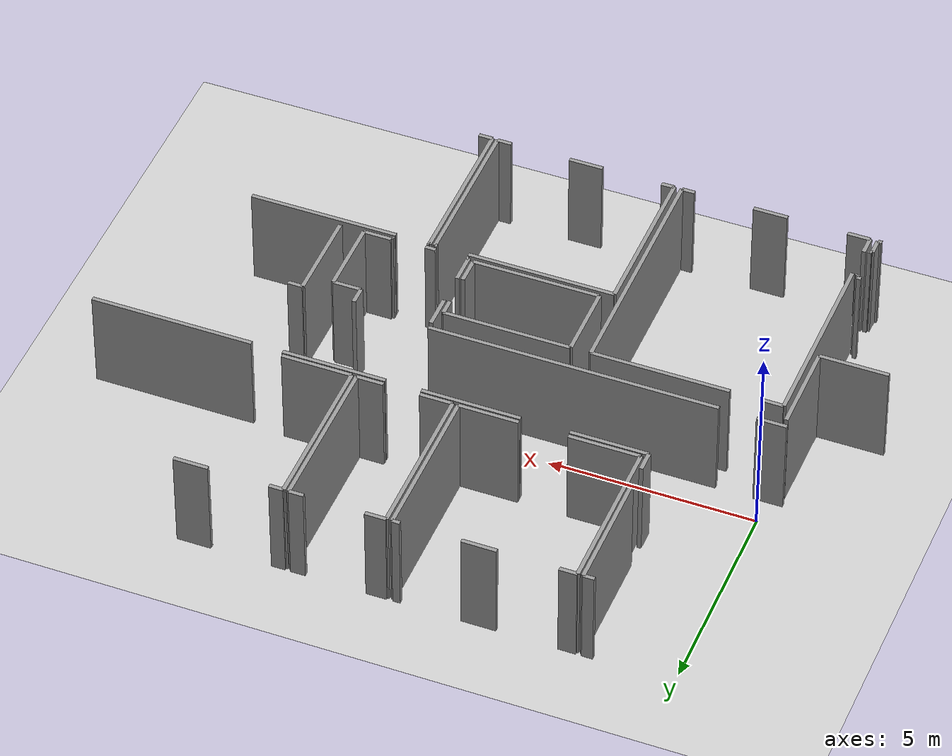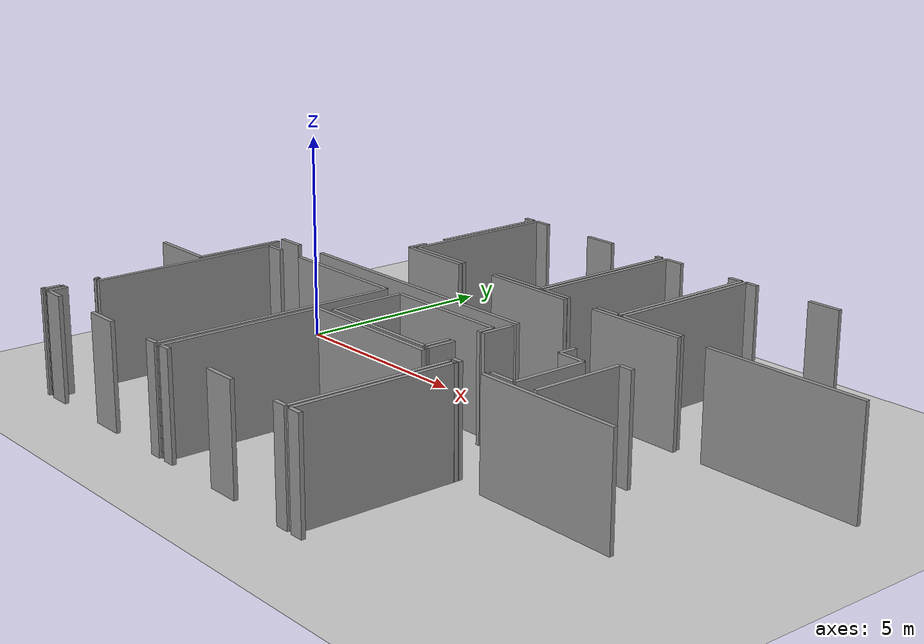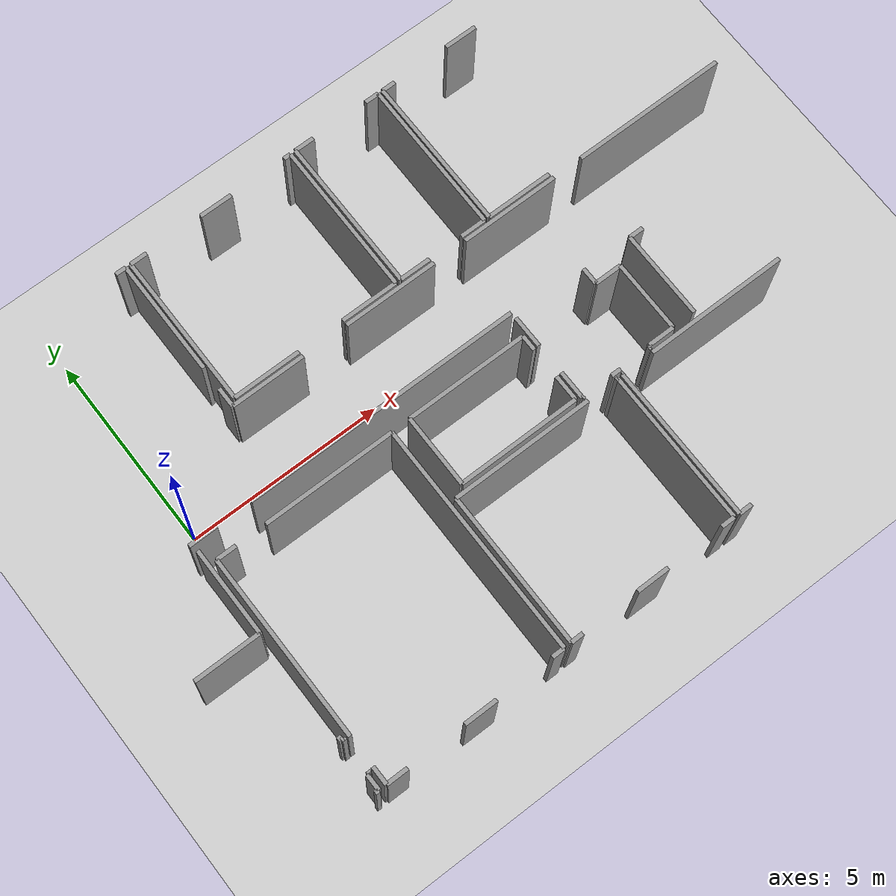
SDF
<sdf version="1.6">
 <world name="default">
  <model name="ground_plane">
   <static>1</static>
   <link name="link">
    <collision name="collision">
     <geometry><plane><normal>0 0 1</normal><size>100 100</size></plane></geometry>
     <surface><friction><ode><mu>100</mu><mu2>50</mu2></ode></friction></surface>
    </collision>
    <visual name="visual">
     <cast_shadows>0</cast_shadows>
     <geometry><plane><normal>0 0 1</normal><size>100 100</size></plane></geometry>
     <material>
      <script><uri>file://media/materials/scripts/gazebo.material</uri><name>Gazebo/Grey</name></script>
     </material>
    </visual>
   </link>
  </model>
  <model name="0510025537_Layout1_PLAN2">
   <static>1</static>
   <link name="Wall_102">
    <collision name="Wall_102_Collision">
     <geometry><box><size>2.2009912944 0.1 2.5</size></box></geometry>
     <pose>1.1004956472 0 1.25 0 0 0</pose>
    </collision>
    <visual name="Wall_102_Visual">
     <pose>1.1004956472 0 1.25 0 0 0</pose>
     <geometry><box><size>2.2009912944 0.1 2.5</size></box></geometry>
     <material>
      <script><uri>file://media/materials/scripts/gazebo.material</uri><name>Gazebo/Grey</name></script>
      <ambient>1 1 1 1</ambient>
     </material>
    </visual>
    <pose>19.9158670649 -6.12184660355 0 0 0 -1.57079632679</pose>
   </link>
   <link name="Wall_103">
    <collision name="Wall_103_Collision">
     <geometry><box><size>1.66251509182 0.1 2.5</size></box></geometry>
     <pose>0.831257545911 0 1.25 0 0 0</pose>
    </collision>
    <visual name="Wall_103_Visual">
     <pose>0.831257545911 0 1.25 0 0 0</pose>
     <geometry><box><size>1.66251509182 0.1 2.5</size></box></geometry>
     <material>
      <script><uri>file://media/materials/scripts/gazebo.material</uri><name>Gazebo/Grey</name></script>
      <ambient>1 1 1 1</ambient>
     </material>
    </visual>
    <pose>19.9158670649 -8.32283789795 0 0 0 3.14159265359</pose>
   </link>
   <link name="Wall_116">
    <collision name="Wall_116_Collision">
     <geometry><box><size>0.10059096397 0.1 2.5</size></box></geometry>
     <pose>0.0502954819851 0 1.25 0 0 0</pose>
    </collision>
    <visual name="Wall_116_Visual">
     <pose>0.0502954819851 0 1.25 0 0 0</pose>
     <geometry><box><size>0.10059096397 0.1 2.5</size></box></geometry>
     <material>
      <script><uri>file://media/materials/scripts/gazebo.material</uri><name>Gazebo/Grey</name></script>
      <ambient>1 1 1 1</ambient>
     </material>
    </visual>
    <pose>19.9218402491 -11.0067039461 0 0 0 -1.57079632679</pose>
   </link>
   <link name="Wall_117">
    <collision name="Wall_117_Collision">
     <geometry><box><size>0.0594141195908 0.1 2.5</size></box></geometry>
     <pose>0.0297070597954 0 1.25 0 0 0</pose>
    </collision>
    <visual name="Wall_117_Visual">
     <pose>0.0297070597954 0 1.25 0 0 0</pose>
     <geometry><box><size>0.0594141195908 0.1 2.5</size></box></geometry>
     <material>
      <script><uri>file://media/materials/scripts/gazebo.material</uri><name>Gazebo/Grey</name></script>
      <ambient>1 1 1 1</ambient>
     </material>
    </visual>
    <pose>19.9218402491 -11.1072949101 0 0 0 0.0</pose>
   </link>
   <link name="Wall_118">
    <collision name="Wall_118_Collision">
     <geometry><box><size>0.0510897883968 0.1 2.5</size></box></geometry>
     <pose>0.0255448941984 0 1.25 0 0 0</pose>
    </collision>
    <visual name="Wall_118_Visual">
     <pose>0.0255448941984 0 1.25 0 0 0</pose>
     <geometry><box><size>0.0510897883968 0.1 2.5</size></box></geometry>
     <material>
      <script><uri>file://media/materials/scripts/gazebo.material</uri><name>Gazebo/Grey</name></script>
      <ambient>1 1 1 1</ambient>
     </material>
    </visual>
    <pose>19.9812543687 -11.1072949101 0 0 0 -1.57079632679</pose>
   </link>
   <link name="Wall_119">
    <collision name="Wall_119_Collision">
     <geometry><box><size>0.0510897883968 0.1 2.5</size></box></geometry>
     <pose>0.0255448941984 0 1.25 0 0 0</pose>
    </collision>
    <visual name="Wall_119_Visual">
     <pose>0.0255448941984 0 1.25 0 0 0</pose>
     <geometry><box><size>0.0510897883968 0.1 2.5</size></box></geometry>
     <material>
      <script><uri>file://media/materials/scripts/gazebo.material</uri><name>Gazebo/Grey</name></script>
      <ambient>1 1 1 1</ambient>
     </material>
    </visual>
    <pose>19.9812543687 -11.9279722946 0 0 0 -1.57079632679</pose>
   </link>
   <link name="Wall_120">
    <collision name="Wall_120_Collision">
     <geometry><box><size>0.0582067738451 0.1 2.5</size></box></geometry>
     <pose>0.0291033869225 0 1.25 0 0 0</pose>
    </collision>
    <visual name="Wall_120_Visual">
     <pose>0.0291033869225 0 1.25 0 0 0</pose>
     <geometry><box><size>0.0582067738451 0.1 2.5</size></box></geometry>
     <material>
      <script><uri>file://media/materials/scripts/gazebo.material</uri><name>Gazebo/Grey</name></script>
      <ambient>1 1 1 1</ambient>
     </material>
    </visual>
    <pose>19.9812543687 -11.979062083 0 0 0 3.14159265359</pose>
   </link>
   <link name="Wall_121">
    <collision name="Wall_121_Collision">
     <geometry><box><size>0.392323822838 0.1 2.5</size></box></geometry>
     <pose>0.196161911419 0 1.25 0 0 0</pose>
    </collision>
    <visual name="Wall_121_Visual">
     <pose>0.196161911419 0 1.25 0 0 0</pose>
     <geometry><box><size>0.392323822838 0.1 2.5</size></box></geometry>
     <material>
      <script><uri>file://media/materials/scripts/gazebo.material</uri><name>Gazebo/Grey</name></script>
      <ambient>1 1 1 1</ambient>
     </material>
    </visual>
    <pose>19.9230475948 -11.979062083 0 0 0 -1.57079632679</pose>
   </link>
   <link name="Wall_122">
    <collision name="Wall_122_Collision">
     <geometry><box><size>0.0979220944271 0.1 2.5</size></box></geometry>
     <pose>0.0489610472136 0 1.25 0 0 0</pose>
    </collision>
    <visual name="Wall_122_Visual">
     <pose>0.0489610472136 0 1.25 0 0 0</pose>
     <geometry><box><size>0.0979220944271 0.1 2.5</size></box></geometry>
     <material>
      <script><uri>file://media/materials/scripts/gazebo.material</uri><name>Gazebo/Grey</name></script>
      <ambient>1 1 1 1</ambient>
     </material>
    </visual>
    <pose>19.9230475948 -12.3713859058 0 0 0 3.14159265359</pose>
   </link>
   <link name="Wall_124">
    <collision name="Wall_124_Collision">
     <geometry><box><size>0.452564021097 0.1 2.5</size></box></geometry>
     <pose>0.226282010548 0 1.25 0 0 0</pose>
    </collision>
    <visual name="Wall_124_Visual">
     <pose>0.226282010548 0 1.25 0 0 0</pose>
     <geometry><box><size>0.452564021097 0.1 2.5</size></box></geometry>
     <material>
      <script><uri>file://media/materials/scripts/gazebo.material</uri><name>Gazebo/Grey</name></script>
      <ambient>1 1 1 1</ambient>
     </material>
    </visual>
    <pose>20.1122196098 -12.3739276863 0 0 0 1.57079632679</pose>
   </link>
   <link name="Wall_125">
    <collision name="Wall_125_Collision">
     <geometry><box><size>4.62966257864 0.1 2.5</size></box></geometry>
     <pose>2.31483128932 0 1.25 0 0 0</pose>
    </collision>
    <visual name="Wall_125_Visual">
     <pose>2.31483128932 0 1.25 0 0 0</pose>
     <geometry><box><size>4.62966257864 0.1 2.5</size></box></geometry>
     <material>
      <script><uri>file://media/materials/scripts/gazebo.material</uri><name>Gazebo/Grey</name></script>
      <ambient>1 1 1 1</ambient>
     </material>
    </visual>
    <pose>20.1122196098 -11.1524750588 0 0 0 1.57079632679</pose>
   </link>
   <link name="Wall_126">
    <collision name="Wall_126_Collision">
     <geometry><box><size>0.505051788778 0.1 2.5</size></box></geometry>
     <pose>0.252525894389 0 1.25 0 0 0</pose>
    </collision>
    <visual name="Wall_126_Visual">
     <pose>0.252525894389 0 1.25 0 0 0</pose>
     <geometry><box><size>0.505051788778 0.1 2.5</size></box></geometry>
     <material>
      <script><uri>file://media/materials/scripts/gazebo.material</uri><name>Gazebo/Grey</name></script>
      <ambient>1 1 1 1</ambient>
     </material>
    </visual>
    <pose>20.1122196098 -6.52281248014 0 0 0 0.0</pose>
   </link>
   <link name="Wall_127">
    <collision name="Wall_127_Collision">
     <geometry><box><size>3.32051852323 0.1 2.5</size></box></geometry>
     <pose>1.66025926161 0 1.25 0 0 0</pose>
    </collision>
    <visual name="Wall_127_Visual">
     <pose>1.66025926161 0 1.25 0 0 0</pose>
     <geometry><box><size>3.32051852323 0.1 2.5</size></box></geometry>
     <material>
      <script><uri>file://media/materials/scripts/gazebo.material</uri><name>Gazebo/Grey</name></script>
      <ambient>1 1 1 1</ambient>
     </material>
    </visual>
    <pose>21.3836182246 -6.52281248014 0 0 0 0.0</pose>
   </link>
   <link name="Wall_128">
    <collision name="Wall_128_Collision">
     <geometry><box><size>5.85022558302 0.1 2.5</size></box></geometry>
     <pose>2.92511279151 0 1.25 0 0 0</pose>
    </collision>
    <visual name="Wall_128_Visual">
     <pose>2.92511279151 0 1.25 0 0 0</pose>
     <geometry><box><size>5.85022558302 0.1 2.5</size></box></geometry>
     <material>
      <script><uri>file://media/materials/scripts/gazebo.material</uri><name>Gazebo/Grey</name></script>
      <ambient>1 1 1 1</ambient>
     </material>
    </visual>
    <pose>24.7041367478 -6.52281248014 0 0 0 -1.57079632679</pose>
   </link>
   <link name="Wall_129">
    <collision name="Wall_129_Collision">
     <geometry><box><size>0.315498506704 0.1 2.5</size></box></geometry>
     <pose>0.157749253352 0 1.25 0 0 0</pose>
    </collision>
    <visual name="Wall_129_Visual">
     <pose>0.157749253352 0 1.25 0 0 0</pose>
     <geometry><box><size>0.315498506704 0.1 2.5</size></box></geometry>
     <material>
      <script><uri>file://media/materials/scripts/gazebo.material</uri><name>Gazebo/Grey</name></script>
      <ambient>1 1 1 1</ambient>
     </material>
    </visual>
    <pose>24.7041367478 -12.3730380632 0 0 0 3.14159265359</pose>
   </link>
   <link name="Wall_130">
    <collision name="Wall_130_Collision">
     <geometry><box><size>0.831416407193 0.1 2.5</size></box></geometry>
     <pose>0.415708203597 0 1.25 0 0 0</pose>
    </collision>
    <visual name="Wall_130_Visual">
     <pose>0.415708203597 0 1.25 0 0 0</pose>
     <geometry><box><size>0.831416407193 0.1 2.5</size></box></geometry>
     <material>
      <script><uri>file://media/materials/scripts/gazebo.material</uri><name>Gazebo/Grey</name></script>
      <ambient>1 1 1 1</ambient>
     </material>
    </visual>
    <pose>22.9405223359 -12.3730380632 0 0 0 3.14159265359</pose>
   </link>
   <link name="Wall_131">
    <collision name="Wall_131_Collision">
     <geometry><box><size>0.539112381721 0.1 2.5</size></box></geometry>
     <pose>0.269556190861 0 1.25 0 0 0</pose>
    </collision>
    <visual name="Wall_131_Visual">
     <pose>0.269556190861 0 1.25 0 0 0</pose>
     <geometry><box><size>0.539112381721 0.1 2.5</size></box></geometry>
     <material>
      <script><uri>file://media/materials/scripts/gazebo.material</uri><name>Gazebo/Grey</name></script>
      <ambient>1 1 1 1</ambient>
     </material>
    </visual>
    <pose>20.6513312575 -12.3730380632 0 0 0 -3.13994249007</pose>
   </link>
   <link name="Wall_132">
    <collision name="Wall_132_Collision">
     <geometry><box><size>3.87252970706 0.1 2.5</size></box></geometry>
     <pose>1.93626485353 0 1.25 0 0 0</pose>
    </collision>
    <visual name="Wall_132_Visual">
     <pose>1.93626485353 0 1.25 0 0 0</pose>
     <geometry><box><size>3.87252970706 0.1 2.5</size></box></geometry>
     <material>
      <script><uri>file://media/materials/scripts/gazebo.material</uri><name>Gazebo/Grey</name></script>
      <ambient>1 1 1 1</ambient>
     </material>
    </visual>
    <pose>24.8923555951 -12.3722119845 0 0 0 1.57079632679</pose>
   </link>
   <link name="Wall_133">
    <collision name="Wall_133_Collision">
     <geometry><box><size>3.57170998284 0.1 2.5</size></box></geometry>
     <pose>1.78585499142 0 1.25 0 0 0</pose>
    </collision>
    <visual name="Wall_133_Visual">
     <pose>1.78585499142 0 1.25 0 0 0</pose>
     <geometry><box><size>3.57170998284 0.1 2.5</size></box></geometry>
     <material>
      <script><uri>file://media/materials/scripts/gazebo.material</uri><name>Gazebo/Grey</name></script>
      <ambient>1 1 1 1</ambient>
     </material>
    </visual>
    <pose>24.8923555951 -8.49968227744 0 0 0 0.0</pose>
   </link>
   <link name="Wall_134">
    <collision name="Wall_134_Collision">
     <geometry><box><size>0.0534409353752 0.1 2.5</size></box></geometry>
     <pose>0.0267204676876 0 1.25 0 0 0</pose>
    </collision>
    <visual name="Wall_134_Visual">
     <pose>0.0267204676876 0 1.25 0 0 0</pose>
     <geometry><box><size>0.0534409353752 0.1 2.5</size></box></geometry>
     <material>
      <script><uri>file://media/materials/scripts/gazebo.material</uri><name>Gazebo/Grey</name></script>
      <ambient>1 1 1 1</ambient>
     </material>
    </visual>
    <pose>29.2297769588 -8.49968227744 0 0 0 0.0</pose>
   </link>
   <link name="Wall_135">
    <collision name="Wall_135_Collision">
     <geometry><box><size>3.86757323505 0.1 2.5</size></box></geometry>
     <pose>1.93378661753 0 1.25 0 0 0</pose>
    </collision>
    <visual name="Wall_135_Visual">
     <pose>1.93378661753 0 1.25 0 0 0</pose>
     <geometry><box><size>3.86757323505 0.1 2.5</size></box></geometry>
     <material>
      <script><uri>file://media/materials/scripts/gazebo.material</uri><name>Gazebo/Grey</name></script>
      <ambient>1 1 1 1</ambient>
     </material>
    </visual>
    <pose>29.2832178941 -8.49968227744 0 0 0 -1.57079632679</pose>
   </link>
   <link name="Wall_136">
    <collision name="Wall_136_Collision">
     <geometry><box><size>0.350003177226 0.1 2.5</size></box></geometry>
     <pose>0.175001588613 0 1.25 0 0 0</pose>
    </collision>
    <visual name="Wall_136_Visual">
     <pose>0.175001588613 0 1.25 0 0 0</pose>
     <geometry><box><size>0.350003177226 0.1 2.5</size></box></geometry>
     <material>
      <script><uri>file://media/materials/scripts/gazebo.material</uri><name>Gazebo/Grey</name></script>
      <ambient>1 1 1 1</ambient>
     </material>
    </visual>
    <pose>29.2832178941 -12.3672555125 0 0 0 3.14159265359</pose>
   </link>
   <link name="Wall_137">
    <collision name="Wall_137_Collision">
     <geometry><box><size>0.824235877232 0.1 2.5</size></box></geometry>
     <pose>0.412117938616 0 1.25 0 0 0</pose>
    </collision>
    <visual name="Wall_137_Visual">
     <pose>0.412117938616 0 1.25 0 0 0</pose>
     <geometry><box><size>0.824235877232 0.1 2.5</size></box></geometry>
     <material>
      <script><uri>file://media/materials/scripts/gazebo.material</uri><name>Gazebo/Grey</name></script>
      <ambient>1 1 1 1</ambient>
     </material>
    </visual>
    <pose>27.4814767745 -12.3672555125 0 0 0 3.14159265359</pose>
   </link>
   <link name="Wall_138">
    <collision name="Wall_138_Collision">
     <geometry><box><size>0.307404769736 0.1 2.5</size></box></geometry>
     <pose>0.153702384868 0 1.25 0 0 0</pose>
    </collision>
    <visual name="Wall_138_Visual">
     <pose>0.153702384868 0 1.25 0 0 0</pose>
     <geometry><box><size>0.307404769736 0.1 2.5</size></box></geometry>
     <material>
      <script><uri>file://media/materials/scripts/gazebo.material</uri><name>Gazebo/Grey</name></script>
      <ambient>1 1 1 1</ambient>
     </material>
    </visual>
    <pose>25.1997204041 -12.3672555125 0 0 0 -3.12546835339</pose>
   </link>
   <link name="Wall_139">
    <collision name="Wall_139_Collision">
     <geometry><box><size>3.88136239436 0.1 2.5</size></box></geometry>
     <pose>1.94068119718 0 1.25 0 0 0</pose>
    </collision>
    <visual name="Wall_139_Visual">
     <pose>1.94068119718 0 1.25 0 0 0</pose>
     <geometry><box><size>3.88136239436 0.1 2.5</size></box></geometry>
     <material>
      <script><uri>file://media/materials/scripts/gazebo.material</uri><name>Gazebo/Grey</name></script>
      <ambient>1 1 1 1</ambient>
     </material>
    </visual>
    <pose>29.4162165597 -12.3753892101 0 0 0 1.57079632679</pose>
   </link>
   <link name="Wall_140">
    <collision name="Wall_140_Collision">
     <geometry><box><size>0.0537586579399 0.1 2.5</size></box></geometry>
     <pose>0.0268793289699 0 1.25 0 0 0</pose>
    </collision>
    <visual name="Wall_140_Visual">
     <pose>0.0268793289699 0 1.25 0 0 0</pose>
     <geometry><box><size>0.0537586579399 0.1 2.5</size></box></geometry>
     <material>
      <script><uri>file://media/materials/scripts/gazebo.material</uri><name>Gazebo/Grey</name></script>
      <ambient>1 1 1 1</ambient>
     </material>
    </visual>
    <pose>29.4162165597 -8.49402681578 0 0 0 0.0</pose>
   </link>
   <link name="Wall_141">
    <collision name="Wall_141_Collision">
     <geometry><box><size>3.59331511724 0.1 2.5</size></box></geometry>
     <pose>1.79665755862 0 1.25 0 0 0</pose>
    </collision>
    <visual name="Wall_141_Visual">
     <pose>1.79665755862 0 1.25 0 0 0</pose>
     <geometry><box><size>3.59331511724 0.1 2.5</size></box></geometry>
     <material>
      <script><uri>file://media/materials/scripts/gazebo.material</uri><name>Gazebo/Grey</name></script>
      <ambient>1 1 1 1</ambient>
     </material>
    </visual>
    <pose>30.243439029 -8.49402681578 0 0 0 0.0</pose>
   </link>
   <link name="Wall_145">
    <collision name="Wall_145_Collision">
     <geometry><box><size>0.333799326428 0.1 2.5</size></box></geometry>
     <pose>0.166899663214 0 1.25 0 0 0</pose>
    </collision>
    <visual name="Wall_145_Visual">
     <pose>0.166899663214 0 1.25 0 0 0</pose>
     <geometry><box><size>0.333799326428 0.1 2.5</size></box></geometry>
     <material>
      <script><uri>file://media/materials/scripts/gazebo.material</uri><name>Gazebo/Grey</name></script>
      <ambient>1 1 1 1</ambient>
     </material>
    </visual>
    <pose>29.7500158861 -12.3753892101 0 0 0 3.14159265359</pose>
   </link>
   <link name="Wall_146">
    <collision name="Wall_146_Collision">
     <geometry><box><size>1.81248014234 0.1 2.5</size></box></geometry>
     <pose>0.90624007117 0 1.25 0 0 0</pose>
    </collision>
    <visual name="Wall_146_Visual">
     <pose>0.90624007117 0 1.25 0 0 0</pose>
     <geometry><box><size>1.81248014234 0.1 2.5</size></box></geometry>
     <material>
      <script><uri>file://media/materials/scripts/gazebo.material</uri><name>Gazebo/Grey</name></script>
      <ambient>1 1 1 1</ambient>
     </material>
    </visual>
    <pose>25.189299104 -8.32194827477 0 0 0 1.57079632679</pose>
   </link>
   <link name="Wall_147">
    <collision name="Wall_147_Collision">
     <geometry><box><size>3.07885874055 0.1 2.5</size></box></geometry>
     <pose>1.53942937027 0 1.25 0 0 0</pose>
    </collision>
    <visual name="Wall_147_Visual">
     <pose>1.53942937027 0 1.25 0 0 0</pose>
     <geometry><box><size>3.07885874055 0.1 2.5</size></box></geometry>
     <material>
      <script><uri>file://media/materials/scripts/gazebo.material</uri><name>Gazebo/Grey</name></script>
      <ambient>1 1 1 1</ambient>
     </material>
    </visual>
    <pose>25.189299104 -6.50946813243 0 0 0 0.0</pose>
   </link>
   <link name="Wall_148">
    <collision name="Wall_148_Collision">
     <geometry><box><size>0.395246870433 0.1 2.5</size></box></geometry>
     <pose>0.197623435216 0 1.25 0 0 0</pose>
    </collision>
    <visual name="Wall_148_Visual">
     <pose>0.197623435216 0 1.25 0 0 0</pose>
     <geometry><box><size>0.395246870433 0.1 2.5</size></box></geometry>
     <material>
      <script><uri>file://media/materials/scripts/gazebo.material</uri><name>Gazebo/Grey</name></script>
      <ambient>1 1 1 1</ambient>
     </material>
    </visual>
    <pose>28.2681578446 -6.50946813243 0 0 0 -1.57079632679</pose>
   </link>
   <link name="Wall_149">
    <collision name="Wall_149_Collision">
     <geometry><box><size>0.652030247188 0.1 2.5</size></box></geometry>
     <pose>0.326015123594 0 1.25 0 0 0</pose>
    </collision>
    <visual name="Wall_149_Visual">
     <pose>0.326015123594 0 1.25 0 0 0</pose>
     <geometry><box><size>0.652030247188 0.1 2.5</size></box></geometry>
     <material>
      <script><uri>file://media/materials/scripts/gazebo.material</uri><name>Gazebo/Grey</name></script>
      <ambient>1 1 1 1</ambient>
     </material>
    </visual>
    <pose>28.2681578446 -7.66845650378 0 0 0 -1.57079632679</pose>
   </link>
   <link name="Wall_150">
    <collision name="Wall_150_Collision">
     <geometry><box><size>3.07885908744 0.1 2.5</size></box></geometry>
     <pose>1.53942954372 0 1.25 0 0 0</pose>
    </collision>
    <visual name="Wall_150_Visual">
     <pose>1.53942954372 0 1.25 0 0 0</pose>
     <geometry><box><size>3.07885908744 0.1 2.5</size></box></geometry>
     <material>
      <script><uri>file://media/materials/scripts/gazebo.material</uri><name>Gazebo/Grey</name></script>
      <ambient>1 1 1 1</ambient>
     </material>
    </visual>
    <pose>28.2681578446 -8.32048675097 0 0 0 -3.14111795702</pose>
   </link>
   <link name="Wall_151">
    <collision name="Wall_151_Collision">
     <geometry><box><size>0.71862489674 0.1 2.5</size></box></geometry>
     <pose>0.35931244837 0 1.25 0 0 0</pose>
    </collision>
    <visual name="Wall_151_Visual">
     <pose>0.35931244837 0 1.25 0 0 0</pose>
     <geometry><box><size>0.71862489674 0.1 2.5</size></box></geometry>
     <material>
      <script><uri>file://media/materials/scripts/gazebo.material</uri><name>Gazebo/Grey</name></script>
      <ambient>1 1 1 1</ambient>
     </material>
    </visual>
    <pose>28.4045879138 -8.37977378153 0 0 0 1.57079632679</pose>
   </link>
   <link name="Wall_152">
    <collision name="Wall_152_Collision">
     <geometry><box><size>0.802694287348 0.1 2.5</size></box></geometry>
     <pose>0.401347143674 0 1.25 0 0 0</pose>
    </collision>
    <visual name="Wall_152_Visual">
     <pose>0.401347143674 0 1.25 0 0 0</pose>
     <geometry><box><size>0.802694287348 0.1 2.5</size></box></geometry>
     <material>
      <script><uri>file://media/materials/scripts/gazebo.material</uri><name>Gazebo/Grey</name></script>
      <ambient>1 1 1 1</ambient>
     </material>
    </visual>
    <pose>28.4045879138 -6.88959140878 0 0 0 1.57079632679</pose>
   </link>
   <link name="Wall_153">
    <collision name="Wall_153_Collision">
     <geometry><box><size>0.428671284235 0.1 2.5</size></box></geometry>
     <pose>0.214335642117 0 1.25 0 0 0</pose>
    </collision>
    <visual name="Wall_153_Visual">
     <pose>0.214335642117 0 1.25 0 0 0</pose>
     <geometry><box><size>0.428671284235 0.1 2.5</size></box></geometry>
     <material>
      <script><uri>file://media/materials/scripts/gazebo.material</uri><name>Gazebo/Grey</name></script>
      <ambient>1 1 1 1</ambient>
     </material>
    </visual>
    <pose>30.2877930991 -6.08689712143 0 0 0 -1.57079632679</pose>
   </link>
   <link name="Wall_154">
    <collision name="Wall_154_Collision">
     <geometry><box><size>0.683167058524 0.1 2.5</size></box></geometry>
     <pose>0.341583529262 0 1.25 0 0 0</pose>
    </collision>
    <visual name="Wall_154_Visual">
     <pose>0.341583529262 0 1.25 0 0 0</pose>
     <geometry><box><size>0.683167058524 0.1 2.5</size></box></geometry>
     <material>
      <script><uri>file://media/materials/scripts/gazebo.material</uri><name>Gazebo/Grey</name></script>
      <ambient>1 1 1 1</ambient>
     </material>
    </visual>
    <pose>30.2877930991 -6.51556840567 0 0 0 0.0</pose>
   </link>
   <link name="Wall_155">
    <collision name="Wall_155_Collision">
     <geometry><box><size>1.80733303679 0.1 2.5</size></box></geometry>
     <pose>0.903666518396 0 1.25 0 0 0</pose>
    </collision>
    <visual name="Wall_155_Visual">
     <pose>0.903666518396 0 1.25 0 0 0</pose>
     <geometry><box><size>1.80733303679 0.1 2.5</size></box></geometry>
     <material>
      <script><uri>file://media/materials/scripts/gazebo.material</uri><name>Gazebo/Grey</name></script>
      <ambient>1 1 1 1</ambient>
     </material>
    </visual>
    <pose>30.9709601576 -6.51556840567 0 0 0 -1.57079632679</pose>
   </link>
   <link name="Wall_156">
    <collision name="Wall_156_Collision">
     <geometry><box><size>0.674525004766 0.1 2.5</size></box></geometry>
     <pose>0.337262502383 0 1.25 0 0 0</pose>
    </collision>
    <visual name="Wall_156_Visual">
     <pose>0.337262502383 0 1.25 0 0 0</pose>
     <geometry><box><size>0.674525004766 0.1 2.5</size></box></geometry>
     <material>
      <script><uri>file://media/materials/scripts/gazebo.material</uri><name>Gazebo/Grey</name></script>
      <ambient>1 1 1 1</ambient>
     </material>
    </visual>
    <pose>30.9709601576 -8.32290144246 0 0 0 3.14159265359</pose>
   </link>
   <link name="Wall_157">
    <collision name="Wall_157_Collision">
     <geometry><box><size>0.0485480078795 0.1 2.5</size></box></geometry>
     <pose>0.0242740039398 0 1.25 0 0 0</pose>
    </collision>
    <visual name="Wall_157_Visual">
     <pose>0.0242740039398 0 1.25 0 0 0</pose>
     <geometry><box><size>0.0485480078795 0.1 2.5</size></box></geometry>
     <material>
      <script><uri>file://media/materials/scripts/gazebo.material</uri><name>Gazebo/Grey</name></script>
      <ambient>1 1 1 1</ambient>
     </material>
    </visual>
    <pose>30.2964351528 -8.32290144246 0 0 0 -1.57079632679</pose>
   </link>
   <link name="Wall_158">
    <collision name="Wall_158_Collision">
     <geometry><box><size>0.0578255067675 0.1 2.5</size></box></geometry>
     <pose>0.0289127533837 0 1.25 0 0 0</pose>
    </collision>
    <visual name="Wall_158_Visual">
     <pose>0.0289127533837 0 1.25 0 0 0</pose>
     <geometry><box><size>0.0578255067675 0.1 2.5</size></box></geometry>
     <material>
      <script><uri>file://media/materials/scripts/gazebo.material</uri><name>Gazebo/Grey</name></script>
      <ambient>1 1 1 1</ambient>
     </material>
    </visual>
    <pose>30.2964351528 -8.37144945034 0 0 0 3.14159265359</pose>
   </link>
   <link name="Wall_159">
    <collision name="Wall_159_Collision">
     <geometry><box><size>0.249984113872 0.1 2.5</size></box></geometry>
     <pose>0.124992056936 0 1.25 0 0 0</pose>
    </collision>
    <visual name="Wall_159_Visual">
     <pose>0.124992056936 0 1.25 0 0 0</pose>
     <geometry><box><size>0.249984113872 0.1 2.5</size></box></geometry>
     <material>
      <script><uri>file://media/materials/scripts/gazebo.material</uri><name>Gazebo/Grey</name></script>
      <ambient>1 1 1 1</ambient>
     </material>
    </visual>
    <pose>29.4651458347 -8.37144945034 0 0 0 3.14159265359</pose>
   </link>
   <link name="Wall_160">
    <collision name="Wall_160_Collision">
     <geometry><box><size>0.0549645711606 0.1 2.5</size></box></geometry>
     <pose>0.0274822855803 0 1.25 0 0 0</pose>
    </collision>
    <visual name="Wall_160_Visual">
     <pose>0.0274822855803 0 1.25 0 0 0</pose>
     <geometry><box><size>0.0549645711606 0.1 2.5</size></box></geometry>
     <material>
      <script><uri>file://media/materials/scripts/gazebo.material</uri><name>Gazebo/Grey</name></script>
      <ambient>1 1 1 1</ambient>
     </material>
    </visual>
    <pose>28.4589184724 -8.37144945034 0 0 0 -2.98955860155</pose>
   </link>
   <link name="Wall_179">
    <collision name="Wall_179_Collision">
     <geometry><box><size>2.20156319502 0.1 2.5</size></box></geometry>
     <pose>1.10078159751 0 1.25 0 0 0</pose>
    </collision>
    <visual name="Wall_179_Visual">
     <pose>1.10078159751 0 1.25 0 0 0</pose>
     <geometry><box><size>2.20156319502 0.1 2.5</size></box></geometry>
     <material>
      <script><uri>file://media/materials/scripts/gazebo.material</uri><name>Gazebo/Grey</name></script>
      <ambient>1 1 1 1</ambient>
     </material>
    </visual>
    <pose>31.559954248 -8.32671411324 0 0 0 1.57079632679</pose>
   </link>
   <link name="Wall_180">
    <collision name="Wall_180_Collision">
     <geometry><box><size>0.363347524941 0.1 2.5</size></box></geometry>
     <pose>0.181673762471 0 1.25 0 0 0</pose>
    </collision>
    <visual name="Wall_180_Visual">
     <pose>0.181673762471 0 1.25 0 0 0</pose>
     <geometry><box><size>0.363347524941 0.1 2.5</size></box></geometry>
     <material>
      <script><uri>file://media/materials/scripts/gazebo.material</uri><name>Gazebo/Grey</name></script>
      <ambient>1 1 1 1</ambient>
     </material>
    </visual>
    <pose>31.559954248 -6.12515091822 0 0 0 0.0</pose>
   </link>
   <link name="Wall_218">
    <collision name="Wall_218_Collision">
     <geometry><box><size>3.86858359281 0.1 2.5</size></box></geometry>
     <pose>1.9342917964 0 1.25 0 0 0</pose>
    </collision>
    <visual name="Wall_218_Visual">
     <pose>1.9342917964 0 1.25 0 0 0</pose>
     <geometry><box><size>3.86858359281 0.1 2.5</size></box></geometry>
     <material>
      <script><uri>file://media/materials/scripts/gazebo.material</uri><name>Gazebo/Grey</name></script>
      <ambient>1 1 1 1</ambient>
     </material>
    </visual>
    <pose>29.41030692 -3.86957488721 0 0 0 1.57079632679</pose>
   </link>
   <link name="Wall_219">
    <collision name="Wall_219_Collision">
     <geometry><box><size>0.34034441126 0.1 2.5</size></box></geometry>
     <pose>0.17017220563 0 1.25 0 0 0</pose>
    </collision>
    <visual name="Wall_219_Visual">
     <pose>0.17017220563 0 1.25 0 0 0</pose>
     <geometry><box><size>0.34034441126 0.1 2.5</size></box></geometry>
     <material>
      <script><uri>file://media/materials/scripts/gazebo.material</uri><name>Gazebo/Grey</name></script>
      <ambient>1 1 1 1</ambient>
     </material>
    </visual>
    <pose>29.41030692 -0.000991294401728 0 0 0 0.0</pose>
   </link>
   <link name="Wall_220">
    <collision name="Wall_220_Collision">
     <geometry><box><size>0.83090805109 0.1 2.5</size></box></geometry>
     <pose>0.415454025545 0 1.25 0 0 0</pose>
    </collision>
    <visual name="Wall_220_Visual">
     <pose>0.415454025545 0 1.25 0 0 0</pose>
     <geometry><box><size>0.83090805109 0.1 2.5</size></box></geometry>
     <material>
      <script><uri>file://media/materials/scripts/gazebo.material</uri><name>Gazebo/Grey</name></script>
      <ambient>1 1 1 1</ambient>
     </material>
    </visual>
    <pose>31.2103323378 -0.000991294401728 0 0 0 0.0</pose>
   </link>
   <link name="Wall_225">
    <collision name="Wall_225_Collision">
     <geometry><box><size>1.69358845521 0.1 2.5</size></box></geometry>
     <pose>0.846794227603 0 1.25 0 0 0</pose>
    </collision>
    <visual name="Wall_225_Visual">
     <pose>0.846794227603 0 1.25 0 0 0</pose>
     <geometry><box><size>1.69358845521 0.1 2.5</size></box></geometry>
     <material>
      <script><uri>file://media/materials/scripts/gazebo.material</uri><name>Gazebo/Grey</name></script>
      <ambient>1 1 1 1</ambient>
     </material>
    </visual>
    <pose>31.1038952786 -3.87014678782 0 0 0 3.14125496788</pose>
   </link>
   <link name="Wall_226">
    <collision name="Wall_226_Collision">
     <geometry><box><size>3.86280104213 0.1 2.5</size></box></geometry>
     <pose>1.93140052107 0 1.25 0 0 0</pose>
    </collision>
    <visual name="Wall_226_Visual">
     <pose>1.93140052107 0 1.25 0 0 0</pose>
     <geometry><box><size>3.86280104213 0.1 2.5</size></box></geometry>
     <material>
      <script><uri>file://media/materials/scripts/gazebo.material</uri><name>Gazebo/Grey</name></script>
      <ambient>1 1 1 1</ambient>
     </material>
    </visual>
    <pose>22.503463176 -3.86874880854 0 0 0 1.57079632679</pose>
   </link>
   <link name="Wall_227">
    <collision name="Wall_227_Collision">
     <geometry><box><size>0.426510770795 0.1 2.5</size></box></geometry>
     <pose>0.213255385397 0 1.25 0 0 0</pose>
    </collision>
    <visual name="Wall_227_Visual">
     <pose>0.213255385397 0 1.25 0 0 0</pose>
     <geometry><box><size>0.426510770795 0.1 2.5</size></box></geometry>
     <material>
      <script><uri>file://media/materials/scripts/gazebo.material</uri><name>Gazebo/Grey</name></script>
      <ambient>1 1 1 1</ambient>
     </material>
    </visual>
    <pose>22.503463176 -0.00594776641037 0 0 0 0.0</pose>
   </link>
   <link name="Wall_228">
    <collision name="Wall_228_Collision">
     <geometry><box><size>0.835864523098 0.1 2.5</size></box></geometry>
     <pose>0.417932261549 0 1.25 0 0 0</pose>
    </collision>
    <visual name="Wall_228_Visual">
     <pose>0.417932261549 0 1.25 0 0 0</pose>
     <geometry><box><size>0.835864523098 0.1 2.5</size></box></geometry>
     <material>
      <script><uri>file://media/materials/scripts/gazebo.material</uri><name>Gazebo/Grey</name></script>
      <ambient>1 1 1 1</ambient>
     </material>
    </visual>
    <pose>24.3791701087 -0.00594776641037 0 0 0 0.0</pose>
   </link>
   <link name="Wall_229">
    <collision name="Wall_229_Collision">
     <geometry><box><size>0.181737306984 0.1 2.5</size></box></geometry>
     <pose>0.0908686534918 0 1.25 0 0 0</pose>
    </collision>
    <visual name="Wall_229_Visual">
     <pose>0.0908686534918 0 1.25 0 0 0</pose>
     <geometry><box><size>0.181737306984 0.1 2.5</size></box></geometry>
     <material>
      <script><uri>file://media/materials/scripts/gazebo.material</uri><name>Gazebo/Grey</name></script>
      <ambient>1 1 1 1</ambient>
     </material>
    </visual>
    <pose>26.6548897503 -0.00594776641037 0 0 0 0.0</pose>
   </link>
   <link name="Wall_230">
    <collision name="Wall_230_Collision">
     <geometry><box><size>3.8587341933 0.1 2.5</size></box></geometry>
     <pose>1.92936709665 0 1.25 0 0 0</pose>
    </collision>
    <visual name="Wall_230_Visual">
     <pose>1.92936709665 0 1.25 0 0 0</pose>
     <geometry><box><size>3.8587341933 0.1 2.5</size></box></geometry>
     <material>
      <script><uri>file://media/materials/scripts/gazebo.material</uri><name>Gazebo/Grey</name></script>
      <ambient>1 1 1 1</ambient>
     </material>
    </visual>
    <pose>26.8366270573 -0.00594776641037 0 0 0 -1.57079632679</pose>
   </link>
   <link name="Wall_231">
    <collision name="Wall_231_Collision">
     <geometry><box><size>1.44678147042 0.1 2.5</size></box></geometry>
     <pose>0.72339073521 0 1.25 0 0 0</pose>
    </collision>
    <visual name="Wall_231_Visual">
     <pose>0.72339073521 0 1.25 0 0 0</pose>
     <geometry><box><size>1.44678147042 0.1 2.5</size></box></geometry>
     <material>
      <script><uri>file://media/materials/scripts/gazebo.material</uri><name>Gazebo/Grey</name></script>
      <ambient>1 1 1 1</ambient>
     </material>
    </visual>
    <pose>26.8366270573 -3.86468195971 0 0 0 3.14159265359</pose>
   </link>
   <link name="Wall_232">
    <collision name="Wall_232_Collision">
     <geometry><box><size>1.71538894744 0.1 2.5</size></box></geometry>
     <pose>0.857694473718 0 1.25 0 0 0</pose>
    </collision>
    <visual name="Wall_232_Visual">
     <pose>0.857694473718 0 1.25 0 0 0</pose>
     <geometry><box><size>1.71538894744 0.1 2.5</size></box></geometry>
     <material>
      <script><uri>file://media/materials/scripts/gazebo.material</uri><name>Gazebo/Grey</name></script>
      <ambient>1 1 1 1</ambient>
     </material>
    </visual>
    <pose>24.2188473025 -3.86468195971 0 0 0 -3.13922184862</pose>
   </link>
   <link name="Wall_236">
    <collision name="Wall_236_Collision">
     <geometry><box><size>0.267331765902 0.1 2.5</size></box></geometry>
     <pose>0.133665882951 0 1.25 0 0 0</pose>
    </collision>
    <visual name="Wall_236_Visual">
     <pose>0.133665882951 0 1.25 0 0 0</pose>
     <geometry><box><size>0.267331765902 0.1 2.5</size></box></geometry>
     <material>
      <script><uri>file://media/materials/scripts/gazebo.material</uri><name>Gazebo/Grey</name></script>
      <ambient>1 1 1 1</ambient>
     </material>
    </visual>
    <pose>22.1077079494 -0.00514710554744 0 0 0 0.0</pose>
   </link>
   <link name="Wall_237">
    <collision name="Wall_237_Collision">
     <geometry><box><size>2.91889178369 0.1 2.5</size></box></geometry>
     <pose>1.45944589185 0 1.25 0 0 0</pose>
    </collision>
    <visual name="Wall_237_Visual">
     <pose>1.45944589185 0 1.25 0 0 0</pose>
     <geometry><box><size>2.91889178369 0.1 2.5</size></box></geometry>
     <material>
      <script><uri>file://media/materials/scripts/gazebo.material</uri><name>Gazebo/Grey</name></script>
      <ambient>1 1 1 1</ambient>
     </material>
    </visual>
    <pose>22.3750397153 -0.00514710554744 0 0 0 -1.57079632679</pose>
   </link>
   <link name="Wall_248">
    <collision name="Wall_248_Collision">
     <geometry><box><size>0.497235813687 0.1 2.5</size></box></geometry>
     <pose>0.248617906844 0 1.25 0 0 0</pose>
    </collision>
    <visual name="Wall_248_Visual">
     <pose>0.248617906844 0 1.25 0 0 0</pose>
     <geometry><box><size>0.497235813687 0.1 2.5</size></box></geometry>
     <material>
      <script><uri>file://media/materials/scripts/gazebo.material</uri><name>Gazebo/Grey</name></script>
      <ambient>1 1 1 1</ambient>
     </material>
    </visual>
    <pose>22.363601703 -3.49822075364 0 0 0 -1.57079632679</pose>
   </link>
   <link name="Wall_249">
    <collision name="Wall_249_Collision">
     <geometry><box><size>1.86700133443 0.1 2.5</size></box></geometry>
     <pose>0.933500667217 0 1.25 0 0 0</pose>
    </collision>
    <visual name="Wall_249_Visual">
     <pose>0.933500667217 0 1.25 0 0 0</pose>
     <geometry><box><size>1.86700133443 0.1 2.5</size></box></geometry>
     <material>
      <script><uri>file://media/materials/scripts/gazebo.material</uri><name>Gazebo/Grey</name></script>
      <ambient>1 1 1 1</ambient>
     </material>
    </visual>
    <pose>22.363601703 -3.99545656733 0 0 0 0.0</pose>
   </link>
   <link name="Wall_250">
    <collision name="Wall_250_Collision">
     <geometry><box><size>2.3852703819 0.1 2.5</size></box></geometry>
     <pose>1.19263519095 0 1.25 0 0 0</pose>
    </collision>
    <visual name="Wall_250_Visual">
     <pose>1.19263519095 0 1.25 0 0 0</pose>
     <geometry><box><size>2.3852703819 0.1 2.5</size></box></geometry>
     <material>
      <script><uri>file://media/materials/scripts/gazebo.material</uri><name>Gazebo/Grey</name></script>
      <ambient>1 1 1 1</ambient>
     </material>
    </visual>
    <pose>25.3963906717 -3.99545656733 0 0 0 0.0</pose>
   </link>
   <link name="Wall_251">
    <collision name="Wall_251_Collision">
     <geometry><box><size>2.49723581369 0.1 2.5</size></box></geometry>
     <pose>1.24861790684 0 1.25 0 0 0</pose>
    </collision>
    <visual name="Wall_251_Visual">
     <pose>1.24861790684 0 1.25 0 0 0</pose>
     <geometry><box><size>2.49723581369 0.1 2.5</size></box></geometry>
     <material>
      <script><uri>file://media/materials/scripts/gazebo.material</uri><name>Gazebo/Grey</name></script>
      <ambient>1 1 1 1</ambient>
     </material>
    </visual>
    <pose>28.6409735019 -3.99545656733 0 0 0 0.0</pose>
   </link>
   <link name="Wall_252">
    <collision name="Wall_252_Collision">
     <geometry><box><size>3.92546228633 0.1 2.5</size></box></geometry>
     <pose>1.96273114317 0 1.25 0 0 0</pose>
    </collision>
    <visual name="Wall_252_Visual">
     <pose>1.96273114317 0 1.25 0 0 0</pose>
     <geometry><box><size>3.92546228633 0.1 2.5</size></box></geometry>
     <material>
      <script><uri>file://media/materials/scripts/gazebo.material</uri><name>Gazebo/Grey</name></script>
      <ambient>1 1 1 1</ambient>
     </material>
    </visual>
    <pose>31.8985829574 -3.99545656733 0 0 0 0.0</pose>
   </link>
   <link name="Wall_259">
    <collision name="Wall_259_Collision">
     <geometry><box><size>6.97121433564 0.1 2.5</size></box></geometry>
     <pose>3.48560716782 0 1.25 0 0 0</pose>
    </collision>
    <visual name="Wall_259_Visual">
     <pose>3.48560716782 0 1.25 0 0 0</pose>
     <geometry><box><size>6.97121433564 0.1 2.5</size></box></geometry>
     <material>
      <script><uri>file://media/materials/scripts/gazebo.material</uri><name>Gazebo/Grey</name></script>
      <ambient>1 1 1 1</ambient>
     </material>
    </visual>
    <pose>28.3977251064 -5.93369130076 0 0 0 3.14159265359</pose>
   </link>
   <link name="Wall_260">
    <collision name="Wall_260_Collision">
     <geometry><box><size>0.713160068628 0.1 2.5</size></box></geometry>
     <pose>0.356580034314 0 1.25 0 0 0</pose>
    </collision>
    <visual name="Wall_260_Visual">
     <pose>0.356580034314 0 1.25 0 0 0</pose>
     <geometry><box><size>0.713160068628 0.1 2.5</size></box></geometry>
     <material>
      <script><uri>file://media/materials/scripts/gazebo.material</uri><name>Gazebo/Grey</name></script>
      <ambient>1 1 1 1</ambient>
     </material>
    </visual>
    <pose>20.5385397471 -5.93369130076 0 0 0 3.14159265359</pose>
   </link>
   <link name="Wall_273">
    <collision name="Wall_273_Collision">
     <geometry><box><size>3.86639766156 0.1 2.5</size></box></geometry>
     <pose>1.93319883078 0 1.25 0 0 0</pose>
    </collision>
    <visual name="Wall_273_Visual">
     <pose>1.93319883078 0 1.25 0 0 0</pose>
     <geometry><box><size>3.86639766156 0.1 2.5</size></box></geometry>
     <material>
      <script><uri>file://media/materials/scripts/gazebo.material</uri><name>Gazebo/Grey</name></script>
      <ambient>1 1 1 1</ambient>
     </material>
    </visual>
    <pose>26.9735019381 -3.86639766156 0 0 0 1.57079632679</pose>
   </link>
   <link name="Wall_274">
    <collision name="Wall_274_Collision">
     <geometry><box><size>0.503272542416 0.1 2.5</size></box></geometry>
     <pose>0.251636271208 0 1.25 0 0 0</pose>
    </collision>
    <visual name="Wall_274_Visual">
     <pose>0.251636271208 0 1.25 0 0 0</pose>
     <geometry><box><size>0.503272542416 0.1 2.5</size></box></geometry>
     <material>
      <script><uri>file://media/materials/scripts/gazebo.material</uri><name>Gazebo/Grey</name></script>
      <ambient>1 1 1 1</ambient>
     </material>
    </visual>
    <pose>26.9735019381 -0.0 0 0 0 0.0</pose>
   </link>
   <link name="Wall_275">
    <collision name="Wall_275_Collision">
     <geometry><box><size>0.357374340726 0.1 2.5</size></box></geometry>
     <pose>0.178687170363 0 1.25 0 0 0</pose>
    </collision>
    <visual name="Wall_275_Visual">
     <pose>0.178687170363 0 1.25 0 0 0</pose>
     <geometry><box><size>0.357374340726 0.1 2.5</size></box></geometry>
     <material>
      <script><uri>file://media/materials/scripts/gazebo.material</uri><name>Gazebo/Grey</name></script>
      <ambient>1 1 1 1</ambient>
     </material>
    </visual>
    <pose>28.9269873546 -0.0 0 0 0 0.0</pose>
   </link>
   <link name="Wall_276">
    <collision name="Wall_276_Collision">
     <geometry><box><size>3.86830399695 0.1 2.5</size></box></geometry>
     <pose>1.93415199847 0 1.25 0 0 0</pose>
    </collision>
    <visual name="Wall_276_Visual">
     <pose>1.93415199847 0 1.25 0 0 0</pose>
     <geometry><box><size>3.86830399695 0.1 2.5</size></box></geometry>
     <material>
      <script><uri>file://media/materials/scripts/gazebo.material</uri><name>Gazebo/Grey</name></script>
      <ambient>1 1 1 1</ambient>
     </material>
    </visual>
    <pose>29.2843616954 -0.0 0 0 0 -1.57079632679</pose>
   </link>
   <link name="Wall_277">
    <collision name="Wall_277_Collision">
     <geometry><box><size>0.646565419076 0.1 2.5</size></box></geometry>
     <pose>0.323282709538 0 1.25 0 0 0</pose>
    </collision>
    <visual name="Wall_277_Visual">
     <pose>0.323282709538 0 1.25 0 0 0</pose>
     <geometry><box><size>0.646565419076 0.1 2.5</size></box></geometry>
     <material>
      <script><uri>file://media/materials/scripts/gazebo.material</uri><name>Gazebo/Grey</name></script>
      <ambient>1 1 1 1</ambient>
     </material>
    </visual>
    <pose>29.2843616954 -3.86830399695 0 0 0 3.14159265359</pose>
   </link>
   <link name="Wall_278">
    <collision name="Wall_278_Collision">
     <geometry><box><size>0.788335532358 0.1 2.5</size></box></geometry>
     <pose>0.394167766179 0 1.25 0 0 0</pose>
    </collision>
    <visual name="Wall_278_Visual">
     <pose>0.394167766179 0 1.25 0 0 0</pose>
     <geometry><box><size>0.788335532358 0.1 2.5</size></box></geometry>
     <material>
      <script><uri>file://media/materials/scripts/gazebo.material</uri><name>Gazebo/Grey</name></script>
      <ambient>1 1 1 1</ambient>
     </material>
    </visual>
    <pose>27.7618351655 -3.86830399695 0 0 0 3.13917447355</pose>
   </link>
   <pose>-20.2 5.22538921014 0 0 0 0</pose>
  </model>
 </world>
</sdf>
